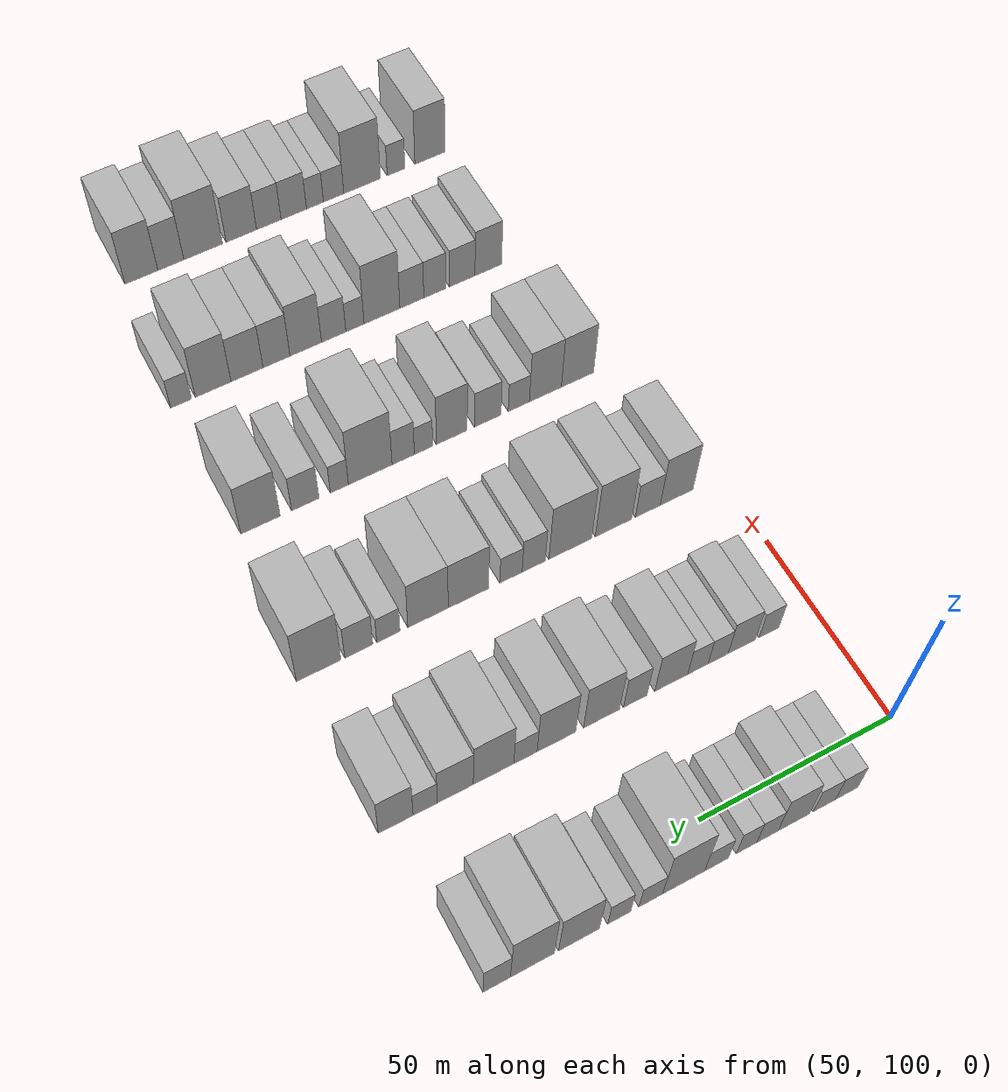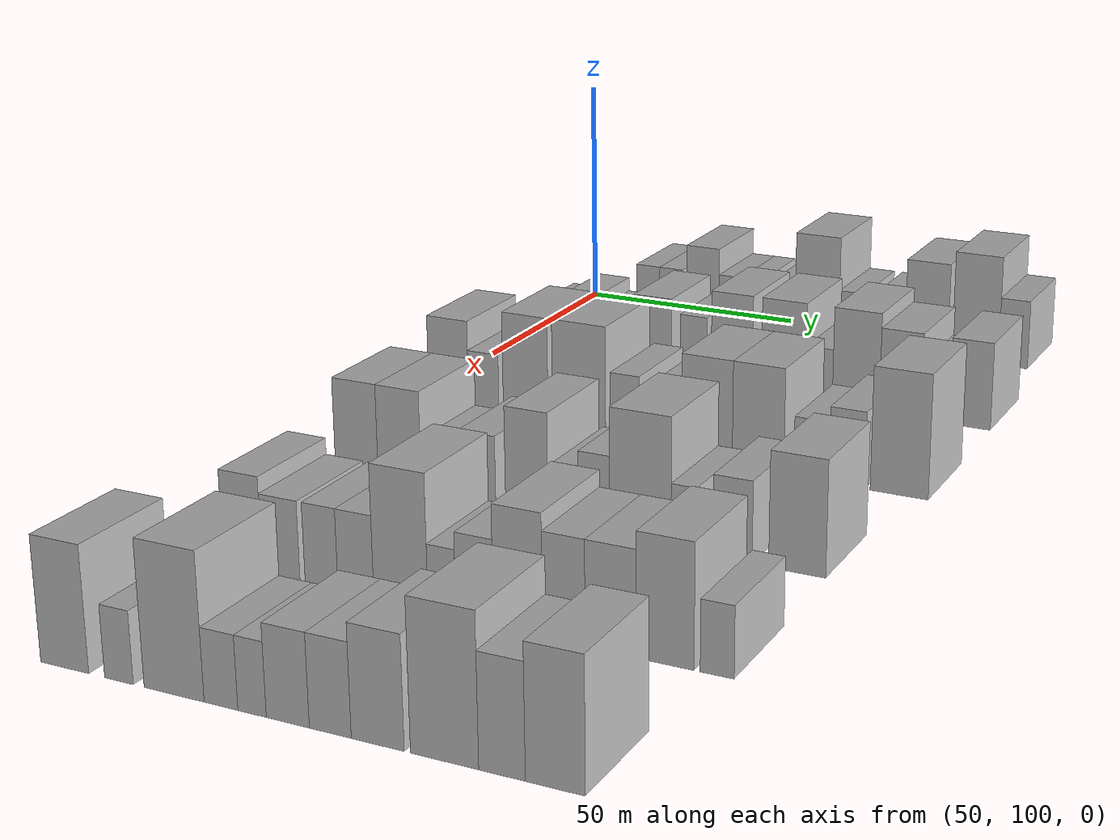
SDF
<sdf version="1.6">
 <world name="default">
  <model name="building_81">
   <static>1</static>
   <pose>50.0000 118.6538 0 0.000000 0.000000 0.000000</pose>
   <link name="link">
    <pose>0 0 6.00 0 0 0</pose>
    <collision name="collision"><geometry><box><size>20.0000 5.8286 12.0000</size></box></geometry></collision>
    <visual name="visual">
     <cast_shadows>0</cast_shadows>
     <geometry><box><size>20.0000 5.8286 12.0000</size></box></geometry>
     <material>
      <script>
       <uri>model://HANNAS_wall/materials/scripts</uri>
       <uri>model://HANNAS_wall/materials/textures</uri>
       <name>vrc/HANNAS_wall</name>
      </script>
     </material>
    </visual>
   </link>
  </model>
  <model name="building_82">
   <static>1</static>
   <pose>50.0000 124.4643 0 0.000000 0.000000 0.000000</pose>
   <link name="link">
    <pose>0 0 6.00 0 0 0</pose>
    <collision name="collision"><geometry><box><size>20.0000 5.7924 12.0000</size></box></geometry></collision>
    <visual name="visual">
     <cast_shadows>0</cast_shadows>
     <geometry><box><size>20.0000 5.7924 12.0000</size></box></geometry>
     <material>
      <script>
       <uri>model://HANNAS_wall/materials/scripts</uri>
       <uri>model://HANNAS_wall/materials/textures</uri>
       <name>vrc/HANNAS_wall</name>
      </script>
     </material>
    </visual>
   </link>
  </model>
  <model name="building_83">
   <static>1</static>
   <pose>50.0000 132.3833 0 0.000000 0.000000 0.000000</pose>
   <link name="link">
    <pose>0 0 9.00 0 0 0</pose>
    <collision name="collision"><geometry><box><size>20.0000 8.0457 18.0000</size></box></geometry></collision>
    <visual name="visual">
     <cast_shadows>0</cast_shadows>
     <geometry><box><size>20.0000 8.0457 18.0000</size></box></geometry>
     <material>
      <script>
       <uri>model://HANNAS_wall/materials/scripts</uri>
       <uri>model://HANNAS_wall/materials/textures</uri>
       <name>vrc/HANNAS_wall</name>
      </script>
     </material>
    </visual>
   </link>
  </model>
  <model name="building_84">
   <static>1</static>
   <pose>50.0000 139.1167 0 0.000000 0.000000 0.000000</pose>
   <link name="link">
    <pose>0 0 6.00 0 0 0</pose>
    <collision name="collision"><geometry><box><size>20.0000 5.4211 12.0000</size></box></geometry></collision>
    <visual name="visual">
     <cast_shadows>0</cast_shadows>
     <geometry><box><size>20.0000 5.4211 12.0000</size></box></geometry>
     <material>
      <script>
       <uri>model://HANNAS_wall/materials/scripts</uri>
       <uri>model://HANNAS_wall/materials/textures</uri>
       <name>vrc/HANNAS_wall</name>
      </script>
     </material>
    </visual>
   </link>
  </model>
  <model name="building_85">
   <static>1</static>
   <pose>50.0000 144.4103 0 0.000000 0.000000 0.000000</pose>
   <link name="link">
    <pose>0 0 6.00 0 0 0</pose>
    <collision name="collision"><geometry><box><size>20.0000 5.1662 12.0000</size></box></geometry></collision>
    <visual name="visual">
     <cast_shadows>0</cast_shadows>
     <geometry><box><size>20.0000 5.1662 12.0000</size></box></geometry>
     <material>
      <script>
       <uri>model://HANNAS_wall/materials/scripts</uri>
       <uri>model://HANNAS_wall/materials/textures</uri>
       <name>vrc/HANNAS_wall</name>
      </script>
     </material>
    </visual>
   </link>
  </model>
  <model name="building_86">
   <static>1</static>
   <pose>50.0000 151.9645 0 0.000000 0.000000 0.000000</pose>
   <link name="link">
    <pose>0 0 6.00 0 0 0</pose>
    <collision name="collision"><geometry><box><size>20.0000 5.9423 12.0000</size></box></geometry></collision>
    <visual name="visual">
     <cast_shadows>0</cast_shadows>
     <geometry><box><size>20.0000 5.9423 12.0000</size></box></geometry>
     <material>
      <script>
       <uri>model://HANNAS_wall/materials/scripts</uri>
       <uri>model://HANNAS_wall/materials/textures</uri>
       <name>vrc/HANNAS_wall</name>
      </script>
     </material>
    </visual>
   </link>
  </model>
  <model name="building_87">
   <static>1</static>
   <pose>50.0000 160.1538 0 0.000000 0.000000 0.000000</pose>
   <link name="link">
    <pose>0 0 12.00 0 0 0</pose>
    <collision name="collision"><geometry><box><size>20.0000 10.4363 24.0000</size></box></geometry></collision>
    <visual name="visual">
     <cast_shadows>0</cast_shadows>
     <geometry><box><size>20.0000 10.4363 24.0000</size></box></geometry>
     <material>
      <script>
       <uri>model://HANNAS_wall/materials/scripts</uri>
       <uri>model://HANNAS_wall/materials/textures</uri>
       <name>vrc/HANNAS_wall</name>
      </script>
     </material>
    </visual>
   </link>
  </model>
  <model name="building_88">
   <static>1</static>
   <pose>50.0000 168.2826 0 0.000000 0.000000 0.000000</pose>
   <link name="link">
    <pose>0 0 6.00 0 0 0</pose>
    <collision name="collision"><geometry><box><size>20.0000 5.8212 12.0000</size></box></geometry></collision>
    <visual name="visual">
     <cast_shadows>0</cast_shadows>
     <geometry><box><size>20.0000 5.8212 12.0000</size></box></geometry>
     <material>
      <script>
       <uri>model://HANNAS_wall/materials/scripts</uri>
       <uri>model://HANNAS_wall/materials/textures</uri>
       <name>vrc/HANNAS_wall</name>
      </script>
     </material>
    </visual>
   </link>
  </model>
  <model name="building_89">
   <static>1</static>
   <pose>50.0000 175.9895 0 0.000000 0.000000 0.000000</pose>
   <link name="link">
    <pose>0 0 6.00 0 0 0</pose>
    <collision name="collision"><geometry><box><size>20.0000 5.5926 12.0000</size></box></geometry></collision>
    <visual name="visual">
     <cast_shadows>0</cast_shadows>
     <geometry><box><size>20.0000 5.5926 12.0000</size></box></geometry>
     <material>
      <script>
       <uri>model://HANNAS_wall/materials/scripts</uri>
       <uri>model://HANNAS_wall/materials/textures</uri>
       <name>vrc/HANNAS_wall</name>
      </script>
     </material>
    </visual>
   </link>
  </model>
  <model name="building_90">
   <static>1</static>
   <pose>50.0000 185.6800 0 0.000000 0.000000 0.000000</pose>
   <link name="link">
    <pose>0 0 10.50 0 0 0</pose>
    <collision name="collision"><geometry><box><size>20.0000 9.7885 21.0000</size></box></geometry></collision>
    <visual name="visual">
     <cast_shadows>0</cast_shadows>
     <geometry><box><size>20.0000 9.7885 21.0000</size></box></geometry>
     <material>
      <script>
       <uri>model://HANNAS_wall/materials/scripts</uri>
       <uri>model://HANNAS_wall/materials/textures</uri>
       <name>vrc/HANNAS_wall</name>
      </script>
     </material>
    </visual>
   </link>
  </model>
  <model name="building_91">
   <static>1</static>
   <pose>50.0000 196.7637 0 0.000000 0.000000 0.000000</pose>
   <link name="link">
    <pose>0 0 12.00 0 0 0</pose>
    <collision name="collision"><geometry><box><size>20.0000 10.3788 24.0000</size></box></geometry></collision>
    <visual name="visual">
     <cast_shadows>0</cast_shadows>
     <geometry><box><size>20.0000 10.3788 24.0000</size></box></geometry>
     <material>
      <script>
       <uri>model://HANNAS_wall/materials/scripts</uri>
       <uri>model://HANNAS_wall/materials/textures</uri>
       <name>vrc/HANNAS_wall</name>
      </script>
     </material>
    </visual>
   </link>
  </model>
  <model name="building_92">
   <static>1</static>
   <pose>50.0000 205.1561 0 0.000000 0.000000 0.000000</pose>
   <link name="link">
    <pose>0 0 7.50 0 0 0</pose>
    <collision name="collision"><geometry><box><size>20.0000 6.4060 15.0000</size></box></geometry></collision>
    <visual name="visual">
     <cast_shadows>0</cast_shadows>
     <geometry><box><size>20.0000 6.4060 15.0000</size></box></geometry>
     <material>
      <script>
       <uri>model://HANNAS_wall/materials/scripts</uri>
       <uri>model://HANNAS_wall/materials/textures</uri>
       <name>vrc/HANNAS_wall</name>
      </script>
     </material>
    </visual>
   </link>
  </model>
  <model name="building_224">
   <static>1</static>
   <pose>90.0000 112.4560 0 0.000000 0.000000 0.000000</pose>
   <link name="link">
    <pose>0 0 6.00 0 0 0</pose>
    <collision name="collision"><geometry><box><size>20.0000 5.3533 12.0000</size></box></geometry></collision>
    <visual name="visual">
     <cast_shadows>0</cast_shadows>
     <geometry><box><size>20.0000 5.3533 12.0000</size></box></geometry>
     <material>
      <script>
       <uri>model://HANNAS_wall/materials/scripts</uri>
       <uri>model://HANNAS_wall/materials/textures</uri>
       <name>vrc/HANNAS_wall</name>
      </script>
     </material>
    </visual>
   </link>
  </model>
  <model name="building_225">
   <static>1</static>
   <pose>90.0000 119.7817 0 0.000000 0.000000 0.000000</pose>
   <link name="link">
    <pose>0 0 7.50 0 0 0</pose>
    <collision name="collision"><geometry><box><size>20.0000 7.2982 15.0000</size></box></geometry></collision>
    <visual name="visual">
     <cast_shadows>0</cast_shadows>
     <geometry><box><size>20.0000 7.2982 15.0000</size></box></geometry>
     <material>
      <script>
       <uri>model://HANNAS_wall/materials/scripts</uri>
       <uri>model://HANNAS_wall/materials/textures</uri>
       <name>vrc/HANNAS_wall</name>
      </script>
     </material>
    </visual>
   </link>
  </model>
  <model name="building_226">
   <static>1</static>
   <pose>90.0000 126.1170 0 0.000000 0.000000 0.000000</pose>
   <link name="link">
    <pose>0 0 6.00 0 0 0</pose>
    <collision name="collision"><geometry><box><size>20.0000 5.3725 12.0000</size></box></geometry></collision>
    <visual name="visual">
     <cast_shadows>0</cast_shadows>
     <geometry><box><size>20.0000 5.3725 12.0000</size></box></geometry>
     <material>
      <script>
       <uri>model://HANNAS_wall/materials/scripts</uri>
       <uri>model://HANNAS_wall/materials/textures</uri>
       <name>vrc/HANNAS_wall</name>
      </script>
     </material>
    </visual>
   </link>
  </model>
  <model name="building_227">
   <static>1</static>
   <pose>90.0000 131.5153 0 0.000000 0.000000 0.000000</pose>
   <link name="link">
    <pose>0 0 6.00 0 0 0</pose>
    <collision name="collision"><geometry><box><size>20.0000 5.4241 12.0000</size></box></geometry></collision>
    <visual name="visual">
     <cast_shadows>0</cast_shadows>
     <geometry><box><size>20.0000 5.4241 12.0000</size></box></geometry>
     <material>
      <script>
       <uri>model://HANNAS_wall/materials/scripts</uri>
       <uri>model://HANNAS_wall/materials/textures</uri>
       <name>vrc/HANNAS_wall</name>
      </script>
     </material>
    </visual>
   </link>
  </model>
  <model name="building_228">
   <static>1</static>
   <pose>90.0000 138.5524 0 0.000000 0.000000 0.000000</pose>
   <link name="link">
    <pose>0 0 9.00 0 0 0</pose>
    <collision name="collision"><geometry><box><size>20.0000 8.6500 18.0000</size></box></geometry></collision>
    <visual name="visual">
     <cast_shadows>0</cast_shadows>
     <geometry><box><size>20.0000 8.6500 18.0000</size></box></geometry>
     <material>
      <script>
       <uri>model://HANNAS_wall/materials/scripts</uri>
       <uri>model://HANNAS_wall/materials/textures</uri>
       <name>vrc/HANNAS_wall</name>
      </script>
     </material>
    </visual>
   </link>
  </model>
  <model name="building_229">
   <static>1</static>
   <pose>90.0000 147.9426 0 0.000000 0.000000 0.000000</pose>
   <link name="link">
    <pose>0 0 7.50 0 0 0</pose>
    <collision name="collision"><geometry><box><size>20.0000 6.1303 15.0000</size></box></geometry></collision>
    <visual name="visual">
     <cast_shadows>0</cast_shadows>
     <geometry><box><size>20.0000 6.1303 15.0000</size></box></geometry>
     <material>
      <script>
       <uri>model://HANNAS_wall/materials/scripts</uri>
       <uri>model://HANNAS_wall/materials/textures</uri>
       <name>vrc/HANNAS_wall</name>
      </script>
     </material>
    </visual>
   </link>
  </model>
  <model name="building_230">
   <static>1</static>
   <pose>90.0000 156.6530 0 0.000000 0.000000 0.000000</pose>
   <link name="link">
    <pose>0 0 10.50 0 0 0</pose>
    <collision name="collision"><geometry><box><size>20.0000 9.2906 21.0000</size></box></geometry></collision>
    <visual name="visual">
     <cast_shadows>0</cast_shadows>
     <geometry><box><size>20.0000 9.2906 21.0000</size></box></geometry>
     <material>
      <script>
       <uri>model://HANNAS_wall/materials/scripts</uri>
       <uri>model://HANNAS_wall/materials/textures</uri>
       <name>vrc/HANNAS_wall</name>
      </script>
     </material>
    </visual>
   </link>
  </model>
  <model name="building_231">
   <static>1</static>
   <pose>90.0000 168.1848 0 0.000000 0.000000 0.000000</pose>
   <link name="link">
    <pose>0 0 10.50 0 0 0</pose>
    <collision name="collision"><geometry><box><size>20.0000 9.7730 21.0000</size></box></geometry></collision>
    <visual name="visual">
     <cast_shadows>0</cast_shadows>
     <geometry><box><size>20.0000 9.7730 21.0000</size></box></geometry>
     <material>
      <script>
       <uri>model://HANNAS_wall/materials/scripts</uri>
       <uri>model://HANNAS_wall/materials/textures</uri>
       <name>vrc/HANNAS_wall</name>
      </script>
     </material>
    </visual>
   </link>
  </model>
  <model name="building_232">
   <static>1</static>
   <pose>90.0000 175.9983 0 0.000000 0.000000 0.000000</pose>
   <link name="link">
    <pose>0 0 6.00 0 0 0</pose>
    <collision name="collision"><geometry><box><size>20.0000 5.8540 12.0000</size></box></geometry></collision>
    <visual name="visual">
     <cast_shadows>0</cast_shadows>
     <geometry><box><size>20.0000 5.8540 12.0000</size></box></geometry>
     <material>
      <script>
       <uri>model://HANNAS_wall/materials/scripts</uri>
       <uri>model://HANNAS_wall/materials/textures</uri>
       <name>vrc/HANNAS_wall</name>
      </script>
     </material>
    </visual>
   </link>
  </model>
  <model name="building_233">
   <static>1</static>
   <pose>90.0000 183.9600 0 0.000000 0.000000 0.000000</pose>
   <link name="link">
    <pose>0 0 10.50 0 0 0</pose>
    <collision name="collision"><geometry><box><size>20.0000 10.0693 21.0000</size></box></geometry></collision>
    <visual name="visual">
     <cast_shadows>0</cast_shadows>
     <geometry><box><size>20.0000 10.0693 21.0000</size></box></geometry>
     <material>
      <script>
       <uri>model://HANNAS_wall/materials/scripts</uri>
       <uri>model://HANNAS_wall/materials/textures</uri>
       <name>vrc/HANNAS_wall</name>
      </script>
     </material>
    </visual>
   </link>
  </model>
  <model name="building_234">
   <static>1</static>
   <pose>90.0000 193.4129 0 0.000000 0.000000 0.000000</pose>
   <link name="link">
    <pose>0 0 9.00 0 0 0</pose>
    <collision name="collision"><geometry><box><size>20.0000 8.8366 18.0000</size></box></geometry></collision>
    <visual name="visual">
     <cast_shadows>0</cast_shadows>
     <geometry><box><size>20.0000 8.8366 18.0000</size></box></geometry>
     <material>
      <script>
       <uri>model://HANNAS_wall/materials/scripts</uri>
       <uri>model://HANNAS_wall/materials/textures</uri>
       <name>vrc/HANNAS_wall</name>
      </script>
     </material>
    </visual>
   </link>
  </model>
  <model name="building_235">
   <static>1</static>
   <pose>90.0000 200.7668 0 0.000000 0.000000 0.000000</pose>
   <link name="link">
    <pose>0 0 6.00 0 0 0</pose>
    <collision name="collision"><geometry><box><size>20.0000 5.8712 12.0000</size></box></geometry></collision>
    <visual name="visual">
     <cast_shadows>0</cast_shadows>
     <geometry><box><size>20.0000 5.8712 12.0000</size></box></geometry>
     <material>
      <script>
       <uri>model://HANNAS_wall/materials/scripts</uri>
       <uri>model://HANNAS_wall/materials/textures</uri>
       <name>vrc/HANNAS_wall</name>
      </script>
     </material>
    </visual>
   </link>
  </model>
  <model name="building_236">
   <static>1</static>
   <pose>90.0000 207.9012 0 0.000000 0.000000 0.000000</pose>
   <link name="link">
    <pose>0 0 9.00 0 0 0</pose>
    <collision name="collision"><geometry><box><size>20.0000 8.3975 18.0000</size></box></geometry></collision>
    <visual name="visual">
     <cast_shadows>0</cast_shadows>
     <geometry><box><size>20.0000 8.3975 18.0000</size></box></geometry>
     <material>
      <script>
       <uri>model://HANNAS_wall/materials/scripts</uri>
       <uri>model://HANNAS_wall/materials/textures</uri>
       <name>vrc/HANNAS_wall</name>
      </script>
     </material>
    </visual>
   </link>
  </model>
  <model name="building_362">
   <static>1</static>
   <pose>130.0000 112.3693 0 0.000000 0.000000 0.000000</pose>
   <link name="link">
    <pose>0 0 10.50 0 0 0</pose>
    <collision name="collision"><geometry><box><size>20.0000 9.1311 21.0000</size></box></geometry></collision>
    <visual name="visual">
     <cast_shadows>0</cast_shadows>
     <geometry><box><size>20.0000 9.1311 21.0000</size></box></geometry>
     <material>
      <script>
       <uri>model://HANNAS_wall/materials/scripts</uri>
       <uri>model://HANNAS_wall/materials/textures</uri>
       <name>vrc/HANNAS_wall</name>
      </script>
     </material>
    </visual>
   </link>
  </model>
  <model name="building_363">
   <static>1</static>
   <pose>130.0000 120.3789 0 0.000000 0.000000 0.000000</pose>
   <link name="link">
    <pose>0 0 7.50 0 0 0</pose>
    <collision name="collision"><geometry><box><size>20.0000 6.8881 15.0000</size></box></geometry></collision>
    <visual name="visual">
     <cast_shadows>0</cast_shadows>
     <geometry><box><size>20.0000 6.8881 15.0000</size></box></geometry>
     <material>
      <script>
       <uri>model://HANNAS_wall/materials/scripts</uri>
       <uri>model://HANNAS_wall/materials/textures</uri>
       <name>vrc/HANNAS_wall</name>
      </script>
     </material>
    </visual>
   </link>
  </model>
  <model name="building_364">
   <static>1</static>
   <pose>130.0000 129.7997 0 0.000000 0.000000 0.000000</pose>
   <link name="link">
    <pose>0 0 12.00 0 0 0</pose>
    <collision name="collision"><geometry><box><size>20.0000 9.9535 24.0000</size></box></geometry></collision>
    <visual name="visual">
     <cast_shadows>0</cast_shadows>
     <geometry><box><size>20.0000 9.9535 24.0000</size></box></geometry>
     <material>
      <script>
       <uri>model://HANNAS_wall/materials/scripts</uri>
       <uri>model://HANNAS_wall/materials/textures</uri>
       <name>vrc/HANNAS_wall</name>
      </script>
     </material>
    </visual>
   </link>
  </model>
  <model name="building_365">
   <static>1</static>
   <pose>130.0000 141.5540 0 0.000000 0.000000 0.000000</pose>
   <link name="link">
    <pose>0 0 12.00 0 0 0</pose>
    <collision name="collision"><geometry><box><size>20.0000 11.5552 24.0000</size></box></geometry></collision>
    <visual name="visual">
     <cast_shadows>0</cast_shadows>
     <geometry><box><size>20.0000 11.5552 24.0000</size></box></geometry>
     <material>
      <script>
       <uri>model://HANNAS_wall/materials/scripts</uri>
       <uri>model://HANNAS_wall/materials/textures</uri>
       <name>vrc/HANNAS_wall</name>
      </script>
     </material>
    </visual>
   </link>
  </model>
  <model name="building_366">
   <static>1</static>
   <pose>130.0000 151.3997 0 0.000000 0.000000 0.000000</pose>
   <link name="link">
    <pose>0 0 7.50 0 0 0</pose>
    <collision name="collision"><geometry><box><size>20.0000 6.1363 15.0000</size></box></geometry></collision>
    <visual name="visual">
     <cast_shadows>0</cast_shadows>
     <geometry><box><size>20.0000 6.1363 15.0000</size></box></geometry>
     <material>
      <script>
       <uri>model://HANNAS_wall/materials/scripts</uri>
       <uri>model://HANNAS_wall/materials/textures</uri>
       <name>vrc/HANNAS_wall</name>
      </script>
     </material>
    </visual>
   </link>
  </model>
  <model name="building_367">
   <static>1</static>
   <pose>130.0000 157.4294 0 0.000000 0.000000 0.000000</pose>
   <link name="link">
    <pose>0 0 6.00 0 0 0</pose>
    <collision name="collision"><geometry><box><size>20.0000 5.9231 12.0000</size></box></geometry></collision>
    <visual name="visual">
     <cast_shadows>0</cast_shadows>
     <geometry><box><size>20.0000 5.9231 12.0000</size></box></geometry>
     <material>
      <script>
       <uri>model://HANNAS_wall/materials/scripts</uri>
       <uri>model://HANNAS_wall/materials/textures</uri>
       <name>vrc/HANNAS_wall</name>
      </script>
     </material>
    </visual>
   </link>
  </model>
  <model name="building_368">
   <static>1</static>
   <pose>130.0000 168.6392 0 0.000000 0.000000 0.000000</pose>
   <link name="link">
    <pose>0 0 10.50 0 0 0</pose>
    <collision name="collision"><geometry><box><size>20.0000 10.4964 21.0000</size></box></geometry></collision>
    <visual name="visual">
     <cast_shadows>0</cast_shadows>
     <geometry><box><size>20.0000 10.4964 21.0000</size></box></geometry>
     <material>
      <script>
       <uri>model://HANNAS_wall/materials/scripts</uri>
       <uri>model://HANNAS_wall/materials/textures</uri>
       <name>vrc/HANNAS_wall</name>
      </script>
     </material>
    </visual>
   </link>
  </model>
  <model name="building_369">
   <static>1</static>
   <pose>130.0000 179.0964 0 0.000000 0.000000 0.000000</pose>
   <link name="link">
    <pose>0 0 10.50 0 0 0</pose>
    <collision name="collision"><geometry><box><size>20.0000 10.4182 21.0000</size></box></geometry></collision>
    <visual name="visual">
     <cast_shadows>0</cast_shadows>
     <geometry><box><size>20.0000 10.4182 21.0000</size></box></geometry>
     <material>
      <script>
       <uri>model://HANNAS_wall/materials/scripts</uri>
       <uri>model://HANNAS_wall/materials/textures</uri>
       <name>vrc/HANNAS_wall</name>
      </script>
     </material>
    </visual>
   </link>
  </model>
  <model name="building_370">
   <static>1</static>
   <pose>130.0000 189.2672 0 0.000000 0.000000 0.000000</pose>
   <link name="link">
    <pose>0 0 6.00 0 0 0</pose>
    <collision name="collision"><geometry><box><size>20.0000 5.9234 12.0000</size></box></geometry></collision>
    <visual name="visual">
     <cast_shadows>0</cast_shadows>
     <geometry><box><size>20.0000 5.9234 12.0000</size></box></geometry>
     <material>
      <script>
       <uri>model://HANNAS_wall/materials/scripts</uri>
       <uri>model://HANNAS_wall/materials/textures</uri>
       <name>vrc/HANNAS_wall</name>
      </script>
     </material>
    </visual>
   </link>
  </model>
  <model name="building_371">
   <static>1</static>
   <pose>130.0000 196.7685 0 0.000000 0.000000 0.000000</pose>
   <link name="link">
    <pose>0 0 7.50 0 0 0</pose>
    <collision name="collision"><geometry><box><size>20.0000 7.0792 15.0000</size></box></geometry></collision>
    <visual name="visual">
     <cast_shadows>0</cast_shadows>
     <geometry><box><size>20.0000 7.0792 15.0000</size></box></geometry>
     <material>
      <script>
       <uri>model://HANNAS_wall/materials/scripts</uri>
       <uri>model://HANNAS_wall/materials/textures</uri>
       <name>vrc/HANNAS_wall</name>
      </script>
     </material>
    </visual>
   </link>
  </model>
  <model name="building_372">
   <static>1</static>
   <pose>130.0000 206.8608 0 0.000000 0.000000 0.000000</pose>
   <link name="link">
    <pose>0 0 12.00 0 0 0</pose>
    <collision name="collision"><geometry><box><size>20.0000 11.1053 24.0000</size></box></geometry></collision>
    <visual name="visual">
     <cast_shadows>0</cast_shadows>
     <geometry><box><size>20.0000 11.1053 24.0000</size></box></geometry>
     <material>
      <script>
       <uri>model://HANNAS_wall/materials/scripts</uri>
       <uri>model://HANNAS_wall/materials/textures</uri>
       <name>vrc/HANNAS_wall</name>
      </script>
     </material>
    </visual>
   </link>
  </model>
  <model name="building_500">
   <static>1</static>
   <pose>170.0000 116.4098 0 0.000000 0.000000 0.000000</pose>
   <link name="link">
    <pose>0 0 10.50 0 0 0</pose>
    <collision name="collision"><geometry><box><size>20.0000 9.1734 21.0000</size></box></geometry></collision>
    <visual name="visual">
     <cast_shadows>0</cast_shadows>
     <geometry><box><size>20.0000 9.1734 21.0000</size></box></geometry>
     <material>
      <script>
       <uri>model://HANNAS_wall/materials/scripts</uri>
       <uri>model://HANNAS_wall/materials/textures</uri>
       <name>vrc/HANNAS_wall</name>
      </script>
     </material>
    </visual>
   </link>
  </model>
  <model name="building_501">
   <static>1</static>
   <pose>170.0000 125.5322 0 0.000000 0.000000 0.000000</pose>
   <link name="link">
    <pose>0 0 10.50 0 0 0</pose>
    <collision name="collision"><geometry><box><size>20.0000 9.0714 21.0000</size></box></geometry></collision>
    <visual name="visual">
     <cast_shadows>0</cast_shadows>
     <geometry><box><size>20.0000 9.0714 21.0000</size></box></geometry>
     <material>
      <script>
       <uri>model://HANNAS_wall/materials/scripts</uri>
       <uri>model://HANNAS_wall/materials/textures</uri>
       <name>vrc/HANNAS_wall</name>
      </script>
     </material>
    </visual>
   </link>
  </model>
  <model name="building_502">
   <static>1</static>
   <pose>170.0000 133.0320 0 0.000000 0.000000 0.000000</pose>
   <link name="link">
    <pose>0 0 6.00 0 0 0</pose>
    <collision name="collision"><geometry><box><size>20.0000 5.9284 12.0000</size></box></geometry></collision>
    <visual name="visual">
     <cast_shadows>0</cast_shadows>
     <geometry><box><size>20.0000 5.9284 12.0000</size></box></geometry>
     <material>
      <script>
       <uri>model://HANNAS_wall/materials/scripts</uri>
       <uri>model://HANNAS_wall/materials/textures</uri>
       <name>vrc/HANNAS_wall</name>
      </script>
     </material>
    </visual>
   </link>
  </model>
  <model name="building_503">
   <static>1</static>
   <pose>170.0000 141.7045 0 0.000000 0.000000 0.000000</pose>
   <link name="link">
    <pose>0 0 7.50 0 0 0</pose>
    <collision name="collision"><geometry><box><size>20.0000 7.4166 15.0000</size></box></geometry></collision>
    <visual name="visual">
     <cast_shadows>0</cast_shadows>
     <geometry><box><size>20.0000 7.4166 15.0000</size></box></geometry>
     <material>
      <script>
       <uri>model://HANNAS_wall/materials/scripts</uri>
       <uri>model://HANNAS_wall/materials/textures</uri>
       <name>vrc/HANNAS_wall</name>
      </script>
     </material>
    </visual>
   </link>
  </model>
  <model name="building_504">
   <static>1</static>
   <pose>170.0000 151.6428 0 0.000000 0.000000 0.000000</pose>
   <link name="link">
    <pose>0 0 10.50 0 0 0</pose>
    <collision name="collision"><geometry><box><size>20.0000 8.4598 21.0000</size></box></geometry></collision>
    <visual name="visual">
     <cast_shadows>0</cast_shadows>
     <geometry><box><size>20.0000 8.4598 21.0000</size></box></geometry>
     <material>
      <script>
       <uri>model://HANNAS_wall/materials/scripts</uri>
       <uri>model://HANNAS_wall/materials/textures</uri>
       <name>vrc/HANNAS_wall</name>
      </script>
     </material>
    </visual>
   </link>
  </model>
  <model name="building_505">
   <static>1</static>
   <pose>170.0000 159.3664 0 0.000000 0.000000 0.000000</pose>
   <link name="link">
    <pose>0 0 6.00 0 0 0</pose>
    <collision name="collision"><geometry><box><size>20.0000 4.9874 12.0000</size></box></geometry></collision>
    <visual name="visual">
     <cast_shadows>0</cast_shadows>
     <geometry><box><size>20.0000 4.9874 12.0000</size></box></geometry>
     <material>
      <script>
       <uri>model://HANNAS_wall/materials/scripts</uri>
       <uri>model://HANNAS_wall/materials/textures</uri>
       <name>vrc/HANNAS_wall</name>
      </script>
     </material>
    </visual>
   </link>
  </model>
  <model name="building_506">
   <static>1</static>
   <pose>170.0000 164.8818 0 0.000000 0.000000 0.000000</pose>
   <link name="link">
    <pose>0 0 7.50 0 0 0</pose>
    <collision name="collision"><geometry><box><size>20.0000 6.0435 15.0000</size></box></geometry></collision>
    <visual name="visual">
     <cast_shadows>0</cast_shadows>
     <geometry><box><size>20.0000 6.0435 15.0000</size></box></geometry>
     <material>
      <script>
       <uri>model://HANNAS_wall/materials/scripts</uri>
       <uri>model://HANNAS_wall/materials/textures</uri>
       <name>vrc/HANNAS_wall</name>
      </script>
     </material>
    </visual>
   </link>
  </model>
  <model name="building_507">
   <static>1</static>
   <pose>170.0000 173.7501 0 0.000000 0.000000 0.000000</pose>
   <link name="link">
    <pose>0 0 12.00 0 0 0</pose>
    <collision name="collision"><geometry><box><size>20.0000 11.6932 24.0000</size></box></geometry></collision>
    <visual name="visual">
     <cast_shadows>0</cast_shadows>
     <geometry><box><size>20.0000 11.6932 24.0000</size></box></geometry>
     <material>
      <script>
       <uri>model://HANNAS_wall/materials/scripts</uri>
       <uri>model://HANNAS_wall/materials/textures</uri>
       <name>vrc/HANNAS_wall</name>
      </script>
     </material>
    </visual>
   </link>
  </model>
  <model name="building_508">
   <static>1</static>
   <pose>170.0000 181.9993 0 0.000000 0.000000 0.000000</pose>
   <link name="link">
    <pose>0 0 6.00 0 0 0</pose>
    <collision name="collision"><geometry><box><size>20.0000 4.8051 12.0000</size></box></geometry></collision>
    <visual name="visual">
     <cast_shadows>0</cast_shadows>
     <geometry><box><size>20.0000 4.8051 12.0000</size></box></geometry>
     <material>
      <script>
       <uri>model://HANNAS_wall/materials/scripts</uri>
       <uri>model://HANNAS_wall/materials/textures</uri>
       <name>vrc/HANNAS_wall</name>
      </script>
     </material>
    </visual>
   </link>
  </model>
  <model name="building_509">
   <static>1</static>
   <pose>170.0000 191.0016 0 0.000000 0.000000 0.000000</pose>
   <link name="link">
    <pose>0 0 7.50 0 0 0</pose>
    <collision name="collision"><geometry><box><size>20.0000 7.1994 15.0000</size></box></geometry></collision>
    <visual name="visual">
     <cast_shadows>0</cast_shadows>
     <geometry><box><size>20.0000 7.1994 15.0000</size></box></geometry>
     <material>
      <script>
       <uri>model://HANNAS_wall/materials/scripts</uri>
       <uri>model://HANNAS_wall/materials/textures</uri>
       <name>vrc/HANNAS_wall</name>
      </script>
     </material>
    </visual>
   </link>
  </model>
  <model name="building_510">
   <static>1</static>
   <pose>170.0000 202.7014 0 0.000000 0.000000 0.000000</pose>
   <link name="link">
    <pose>0 0 10.50 0 0 0</pose>
    <collision name="collision"><geometry><box><size>20.0000 10.2002 21.0000</size></box></geometry></collision>
    <visual name="visual">
     <cast_shadows>0</cast_shadows>
     <geometry><box><size>20.0000 10.2002 21.0000</size></box></geometry>
     <material>
      <script>
       <uri>model://HANNAS_wall/materials/scripts</uri>
       <uri>model://HANNAS_wall/materials/textures</uri>
       <name>vrc/HANNAS_wall</name>
      </script>
     </material>
    </visual>
   </link>
  </model>
  <model name="building_637">
   <static>1</static>
   <pose>210.0000 119.7004 0 0.000000 0.000000 0.000000</pose>
   <link name="link">
    <pose>0 0 9.00 0 0 0</pose>
    <collision name="collision"><geometry><box><size>20.0000 7.7820 18.0000</size></box></geometry></collision>
    <visual name="visual">
     <cast_shadows>0</cast_shadows>
     <geometry><box><size>20.0000 7.7820 18.0000</size></box></geometry>
     <material>
      <script>
       <uri>model://HANNAS_wall/materials/scripts</uri>
       <uri>model://HANNAS_wall/materials/textures</uri>
       <name>vrc/HANNAS_wall</name>
      </script>
     </material>
    </visual>
   </link>
  </model>
  <model name="building_638">
   <static>1</static>
   <pose>210.0000 127.3005 0 0.000000 0.000000 0.000000</pose>
   <link name="link">
    <pose>0 0 7.50 0 0 0</pose>
    <collision name="collision"><geometry><box><size>20.0000 7.4181 15.0000</size></box></geometry></collision>
    <visual name="visual">
     <cast_shadows>0</cast_shadows>
     <geometry><box><size>20.0000 7.4181 15.0000</size></box></geometry>
     <material>
      <script>
       <uri>model://HANNAS_wall/materials/scripts</uri>
       <uri>model://HANNAS_wall/materials/textures</uri>
       <name>vrc/HANNAS_wall</name>
      </script>
     </material>
    </visual>
   </link>
  </model>
  <model name="building_639">
   <static>1</static>
   <pose>210.0000 135.1970 0 0.000000 0.000000 0.000000</pose>
   <link name="link">
    <pose>0 0 7.50 0 0 0</pose>
    <collision name="collision"><geometry><box><size>20.0000 6.3748 15.0000</size></box></geometry></collision>
    <visual name="visual">
     <cast_shadows>0</cast_shadows>
     <geometry><box><size>20.0000 6.3748 15.0000</size></box></geometry>
     <material>
      <script>
       <uri>model://HANNAS_wall/materials/scripts</uri>
       <uri>model://HANNAS_wall/materials/textures</uri>
       <name>vrc/HANNAS_wall</name>
      </script>
     </material>
    </visual>
   </link>
  </model>
  <model name="building_640">
   <static>1</static>
   <pose>210.0000 141.8072 0 0.000000 0.000000 0.000000</pose>
   <link name="link">
    <pose>0 0 7.50 0 0 0</pose>
    <collision name="collision"><geometry><box><size>20.0000 6.8457 15.0000</size></box></geometry></collision>
    <visual name="visual">
     <cast_shadows>0</cast_shadows>
     <geometry><box><size>20.0000 6.8457 15.0000</size></box></geometry>
     <material>
      <script>
       <uri>model://HANNAS_wall/materials/scripts</uri>
       <uri>model://HANNAS_wall/materials/textures</uri>
       <name>vrc/HANNAS_wall</name>
      </script>
     </material>
    </visual>
   </link>
  </model>
  <model name="building_641">
   <static>1</static>
   <pose>210.0000 150.3110 0 0.000000 0.000000 0.000000</pose>
   <link name="link">
    <pose>0 0 12.00 0 0 0</pose>
    <collision name="collision"><geometry><box><size>20.0000 10.1619 24.0000</size></box></geometry></collision>
    <visual name="visual">
     <cast_shadows>0</cast_shadows>
     <geometry><box><size>20.0000 10.1619 24.0000</size></box></geometry>
     <material>
      <script>
       <uri>model://HANNAS_wall/materials/scripts</uri>
       <uri>model://HANNAS_wall/materials/textures</uri>
       <name>vrc/HANNAS_wall</name>
      </script>
     </material>
    </visual>
   </link>
  </model>
  <model name="building_642">
   <static>1</static>
   <pose>210.0000 157.9551 0 0.000000 0.000000 0.000000</pose>
   <link name="link">
    <pose>0 0 6.00 0 0 0</pose>
    <collision name="collision"><geometry><box><size>20.0000 5.1263 12.0000</size></box></geometry></collision>
    <visual name="visual">
     <cast_shadows>0</cast_shadows>
     <geometry><box><size>20.0000 5.1263 12.0000</size></box></geometry>
     <material>
      <script>
       <uri>model://HANNAS_wall/materials/scripts</uri>
       <uri>model://HANNAS_wall/materials/textures</uri>
       <name>vrc/HANNAS_wall</name>
      </script>
     </material>
    </visual>
   </link>
  </model>
  <model name="building_643">
   <static>1</static>
   <pose>210.0000 163.9174 0 0.000000 0.000000 0.000000</pose>
   <link name="link">
    <pose>0 0 7.50 0 0 0</pose>
    <collision name="collision"><geometry><box><size>20.0000 6.7984 15.0000</size></box></geometry></collision>
    <visual name="visual">
     <cast_shadows>0</cast_shadows>
     <geometry><box><size>20.0000 6.7984 15.0000</size></box></geometry>
     <material>
      <script>
       <uri>model://HANNAS_wall/materials/scripts</uri>
       <uri>model://HANNAS_wall/materials/textures</uri>
       <name>vrc/HANNAS_wall</name>
      </script>
     </material>
    </visual>
   </link>
  </model>
  <model name="building_644">
   <static>1</static>
   <pose>210.0000 171.6795 0 0.000000 0.000000 0.000000</pose>
   <link name="link">
    <pose>0 0 10.50 0 0 0</pose>
    <collision name="collision"><geometry><box><size>20.0000 8.7258 21.0000</size></box></geometry></collision>
    <visual name="visual">
     <cast_shadows>0</cast_shadows>
     <geometry><box><size>20.0000 8.7258 21.0000</size></box></geometry>
     <material>
      <script>
       <uri>model://HANNAS_wall/materials/scripts</uri>
       <uri>model://HANNAS_wall/materials/textures</uri>
       <name>vrc/HANNAS_wall</name>
      </script>
     </material>
    </visual>
   </link>
  </model>
  <model name="building_645">
   <static>1</static>
   <pose>210.0000 179.7496 0 0.000000 0.000000 0.000000</pose>
   <link name="link">
    <pose>0 0 9.00 0 0 0</pose>
    <collision name="collision"><geometry><box><size>20.0000 7.4145 18.0000</size></box></geometry></collision>
    <visual name="visual">
     <cast_shadows>0</cast_shadows>
     <geometry><box><size>20.0000 7.4145 18.0000</size></box></geometry>
     <material>
      <script>
       <uri>model://HANNAS_wall/materials/scripts</uri>
       <uri>model://HANNAS_wall/materials/textures</uri>
       <name>vrc/HANNAS_wall</name>
      </script>
     </material>
    </visual>
   </link>
  </model>
  <model name="building_646">
   <static>1</static>
   <pose>210.0000 187.8111 0 0.000000 0.000000 0.000000</pose>
   <link name="link">
    <pose>0 0 9.00 0 0 0</pose>
    <collision name="collision"><geometry><box><size>20.0000 8.7085 18.0000</size></box></geometry></collision>
    <visual name="visual">
     <cast_shadows>0</cast_shadows>
     <geometry><box><size>20.0000 8.7085 18.0000</size></box></geometry>
     <material>
      <script>
       <uri>model://HANNAS_wall/materials/scripts</uri>
       <uri>model://HANNAS_wall/materials/textures</uri>
       <name>vrc/HANNAS_wall</name>
      </script>
     </material>
    </visual>
   </link>
  </model>
  <model name="building_647">
   <static>1</static>
   <pose>210.0000 196.9962 0 0.000000 0.000000 0.000000</pose>
   <link name="link">
    <pose>0 0 10.50 0 0 0</pose>
    <collision name="collision"><geometry><box><size>20.0000 9.6616 21.0000</size></box></geometry></collision>
    <visual name="visual">
     <cast_shadows>0</cast_shadows>
     <geometry><box><size>20.0000 9.6616 21.0000</size></box></geometry>
     <material>
      <script>
       <uri>model://HANNAS_wall/materials/scripts</uri>
       <uri>model://HANNAS_wall/materials/textures</uri>
       <name>vrc/HANNAS_wall</name>
      </script>
     </material>
    </visual>
   </link>
  </model>
  <model name="building_648">
   <static>1</static>
   <pose>210.0000 205.6040 0 0.000000 0.000000 0.000000</pose>
   <link name="link">
    <pose>0 0 6.00 0 0 0</pose>
    <collision name="collision"><geometry><box><size>20.0000 5.5540 12.0000</size></box></geometry></collision>
    <visual name="visual">
     <cast_shadows>0</cast_shadows>
     <geometry><box><size>20.0000 5.5540 12.0000</size></box></geometry>
     <material>
      <script>
       <uri>model://HANNAS_wall/materials/scripts</uri>
       <uri>model://HANNAS_wall/materials/textures</uri>
       <name>vrc/HANNAS_wall</name>
      </script>
     </material>
    </visual>
   </link>
  </model>
  <model name="building_772">
   <static>1</static>
   <pose>250.0000 115.6302 0 0.000000 0.000000 0.000000</pose>
   <link name="link">
    <pose>0 0 10.50 0 0 0</pose>
    <collision name="collision"><geometry><box><size>20.0000 9.1318 21.0000</size></box></geometry></collision>
    <visual name="visual">
     <cast_shadows>0</cast_shadows>
     <geometry><box><size>20.0000 9.1318 21.0000</size></box></geometry>
     <material>
      <script>
       <uri>model://HANNAS_wall/materials/scripts</uri>
       <uri>model://HANNAS_wall/materials/textures</uri>
       <name>vrc/HANNAS_wall</name>
      </script>
     </material>
    </visual>
   </link>
  </model>
  <model name="building_773">
   <static>1</static>
   <pose>250.0000 125.8496 0 0.000000 0.000000 0.000000</pose>
   <link name="link">
    <pose>0 0 6.00 0 0 0</pose>
    <collision name="collision"><geometry><box><size>20.0000 5.3070 12.0000</size></box></geometry></collision>
    <visual name="visual">
     <cast_shadows>0</cast_shadows>
     <geometry><box><size>20.0000 5.3070 12.0000</size></box></geometry>
     <material>
      <script>
       <uri>model://HANNAS_wall/materials/scripts</uri>
       <uri>model://HANNAS_wall/materials/textures</uri>
       <name>vrc/HANNAS_wall</name>
      </script>
     </material>
    </visual>
   </link>
  </model>
  <model name="building_774">
   <static>1</static>
   <pose>250.0000 135.9310 0 0.000000 0.000000 0.000000</pose>
   <link name="link">
    <pose>0 0 12.00 0 0 0</pose>
    <collision name="collision"><geometry><box><size>20.0000 10.8558 24.0000</size></box></geometry></collision>
    <visual name="visual">
     <cast_shadows>0</cast_shadows>
     <geometry><box><size>20.0000 10.8558 24.0000</size></box></geometry>
     <material>
      <script>
       <uri>model://HANNAS_wall/materials/scripts</uri>
       <uri>model://HANNAS_wall/materials/textures</uri>
       <name>vrc/HANNAS_wall</name>
      </script>
     </material>
    </visual>
   </link>
  </model>
  <model name="building_775">
   <static>1</static>
   <pose>250.0000 144.3470 0 0.000000 0.000000 0.000000</pose>
   <link name="link">
    <pose>0 0 6.00 0 0 0</pose>
    <collision name="collision"><geometry><box><size>20.0000 5.9762 12.0000</size></box></geometry></collision>
    <visual name="visual">
     <cast_shadows>0</cast_shadows>
     <geometry><box><size>20.0000 5.9762 12.0000</size></box></geometry>
     <material>
      <script>
       <uri>model://HANNAS_wall/materials/scripts</uri>
       <uri>model://HANNAS_wall/materials/textures</uri>
       <name>vrc/HANNAS_wall</name>
      </script>
     </material>
    </visual>
   </link>
  </model>
  <model name="building_776">
   <static>1</static>
   <pose>250.0000 149.8101 0 0.000000 0.000000 0.000000</pose>
   <link name="link">
    <pose>0 0 6.00 0 0 0</pose>
    <collision name="collision"><geometry><box><size>20.0000 4.9501 12.0000</size></box></geometry></collision>
    <visual name="visual">
     <cast_shadows>0</cast_shadows>
     <geometry><box><size>20.0000 4.9501 12.0000</size></box></geometry>
     <material>
      <script>
       <uri>model://HANNAS_wall/materials/scripts</uri>
       <uri>model://HANNAS_wall/materials/textures</uri>
       <name>vrc/HANNAS_wall</name>
      </script>
     </material>
    </visual>
   </link>
  </model>
  <model name="building_777">
   <static>1</static>
   <pose>250.0000 155.9772 0 0.000000 0.000000 0.000000</pose>
   <link name="link">
    <pose>0 0 7.50 0 0 0</pose>
    <collision name="collision"><geometry><box><size>20.0000 7.3841 15.0000</size></box></geometry></collision>
    <visual name="visual">
     <cast_shadows>0</cast_shadows>
     <geometry><box><size>20.0000 7.3841 15.0000</size></box></geometry>
     <material>
      <script>
       <uri>model://HANNAS_wall/materials/scripts</uri>
       <uri>model://HANNAS_wall/materials/textures</uri>
       <name>vrc/HANNAS_wall</name>
      </script>
     </material>
    </visual>
   </link>
  </model>
  <model name="building_778">
   <static>1</static>
   <pose>250.0000 163.1952 0 0.000000 0.000000 0.000000</pose>
   <link name="link">
    <pose>0 0 7.50 0 0 0</pose>
    <collision name="collision"><geometry><box><size>20.0000 7.0519 15.0000</size></box></geometry></collision>
    <visual name="visual">
     <cast_shadows>0</cast_shadows>
     <geometry><box><size>20.0000 7.0519 15.0000</size></box></geometry>
     <material>
      <script>
       <uri>model://HANNAS_wall/materials/scripts</uri>
       <uri>model://HANNAS_wall/materials/textures</uri>
       <name>vrc/HANNAS_wall</name>
      </script>
     </material>
    </visual>
   </link>
  </model>
  <model name="building_779">
   <static>1</static>
   <pose>250.0000 171.0852 0 0.000000 0.000000 0.000000</pose>
   <link name="link">
    <pose>0 0 9.00 0 0 0</pose>
    <collision name="collision"><geometry><box><size>20.0000 8.7281 18.0000</size></box></geometry></collision>
    <visual name="visual">
     <cast_shadows>0</cast_shadows>
     <geometry><box><size>20.0000 8.7281 18.0000</size></box></geometry>
     <material>
      <script>
       <uri>model://HANNAS_wall/materials/scripts</uri>
       <uri>model://HANNAS_wall/materials/textures</uri>
       <name>vrc/HANNAS_wall</name>
      </script>
     </material>
    </visual>
   </link>
  </model>
  <model name="building_780">
   <static>1</static>
   <pose>250.0000 181.9106 0 0.000000 0.000000 0.000000</pose>
   <link name="link">
    <pose>0 0 12.00 0 0 0</pose>
    <collision name="collision"><geometry><box><size>20.0000 10.9227 24.0000</size></box></geometry></collision>
    <visual name="visual">
     <cast_shadows>0</cast_shadows>
     <geometry><box><size>20.0000 10.9227 24.0000</size></box></geometry>
     <material>
      <script>
       <uri>model://HANNAS_wall/materials/scripts</uri>
       <uri>model://HANNAS_wall/materials/textures</uri>
       <name>vrc/HANNAS_wall</name>
      </script>
     </material>
    </visual>
   </link>
  </model>
  <model name="building_781">
   <static>1</static>
   <pose>250.0000 191.0061 0 0.000000 0.000000 0.000000</pose>
   <link name="link">
    <pose>0 0 9.00 0 0 0</pose>
    <collision name="collision"><geometry><box><size>20.0000 7.2684 18.0000</size></box></geometry></collision>
    <visual name="visual">
     <cast_shadows>0</cast_shadows>
     <geometry><box><size>20.0000 7.2684 18.0000</size></box></geometry>
     <material>
      <script>
       <uri>model://HANNAS_wall/materials/scripts</uri>
       <uri>model://HANNAS_wall/materials/textures</uri>
       <name>vrc/HANNAS_wall</name>
      </script>
     </material>
    </visual>
   </link>
  </model>
  <model name="building_782">
   <static>1</static>
   <pose>250.0000 199.2069 0 0.000000 0.000000 0.000000</pose>
   <link name="link">
    <pose>0 0 10.50 0 0 0</pose>
    <collision name="collision"><geometry><box><size>20.0000 9.1332 21.0000</size></box></geometry></collision>
    <visual name="visual">
     <cast_shadows>0</cast_shadows>
     <geometry><box><size>20.0000 9.1332 21.0000</size></box></geometry>
     <material>
      <script>
       <uri>model://HANNAS_wall/materials/scripts</uri>
       <uri>model://HANNAS_wall/materials/textures</uri>
       <name>vrc/HANNAS_wall</name>
      </script>
     </material>
    </visual>
   </link>
  </model>
 </world>
</sdf>
